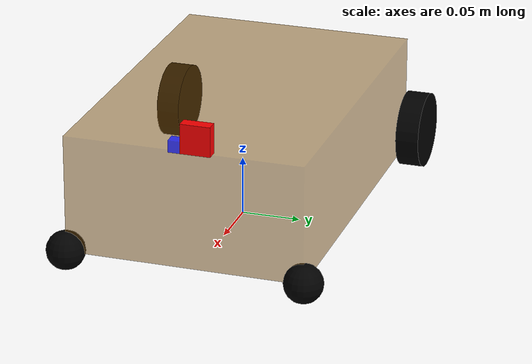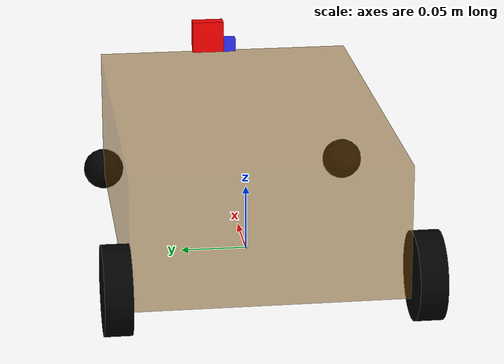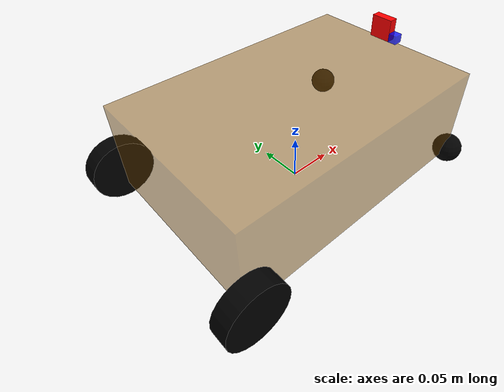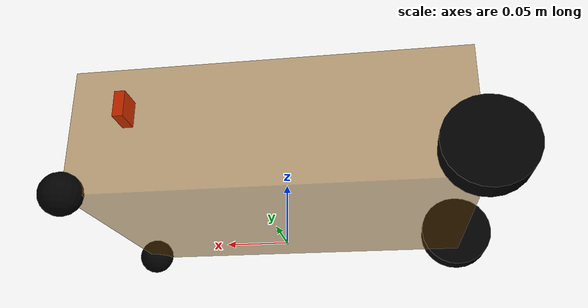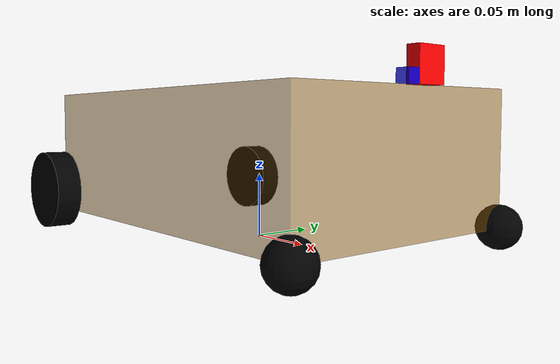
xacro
<robot name="follower_car" xmlns:xacro="http://wiki.ros.org/xacro">
    <xacro:include filename="inertia.xacro" />
    <xacro:include filename="base.xacro" />
    <xacro:include filename="camera.xacro" />
    <xacro:include filename="depthcamera.xacro" />
    <xacro:include filename="sim/driver.xacro" />
    <xacro:include filename="sim/camera.xacro" />
    <xacro:include filename="sim/depthcamera.xacro" />

</robot>

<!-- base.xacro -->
<robot name="follower_base" xmlns:xacro="http://www.ros.org/wiki/xacro">

    <xacro:property name="PI" value="3.141"/>

    <material name="black">
        <color rgba="0.0 0.0 0.0 1.0" />
    </material>

    <xacro:property name="base_footprint_radius" value="0.001" />
    <xacro:property name="base_link_x" value="0.3" /> <!-- base_link len-->
    <xacro:property name="base_link_y" value="${base_link_x/3*2}" /> <!-- base_link width -->
    <xacro:property name="base_link_z" value="0.1" /> <!-- base_link height -->
    <xacro:property name="earth_space" value="0.015" />
    <xacro:property name="base_link_m" value="0.5" />

    <link name="follower_base_footprint">
      <visual>
        <geometry>
          <sphere radius="${base_footprint_radius}" />
        </geometry>
      </visual>
    </link>

    <link name="follower_base_link">
      <visual>
        <geometry>
          <box size="${base_link_x} ${base_link_y} ${base_link_z}" />
        </geometry>
        <origin xyz="0 0 0" rpy="0 0 0" />
        <material name="yellow">
          <color rgba="0.5 0.3 0.0 0.5" />
        </material>
      </visual>
      <collision>
        <geometry>
          <box size="${base_link_x} ${base_link_y} ${base_link_z}" />
        </geometry>
        <origin xyz="0 0 0" rpy="0 0 0" />
      </collision>
      <xacro:Box_inertial_matrix m="${base_link_m}" l="${base_link_x}" w="${base_link_y}" h="${base_link_z}" />
    </link>

    <joint name="base_link2base_footprint" type="fixed">
      <parent link="follower_base_footprint" />
      <child link="follower_base_link" />
      <origin xyz="0 0 ${earth_space + base_link_z / 2 }" />
    </joint>
    <gazebo reference="follower_base_link">
        <material>Gazebo/Green</material>
    </gazebo>

    <xacro:property name="wheel_radius" value="0.0325" />
    <xacro:property name="wheel_length" value="0.02" />
    <xacro:property name="wheel_m" value="0.05" />

    <!-- flag1 flag2 x and y axis deviation -->
    <xacro:macro name="add_wheels" params="name flag1 flag2">
      <link name="follower_${name}_wheel">
        <visual>
          <geometry>
            <cylinder radius="${wheel_radius}" length="${wheel_length}" />
          </geometry>
          <origin xyz="0.0 0.0 0.0" rpy="${PI / 2} 0.0 0.0" />
          <material name="black" >
            <color rgba="0.0 0.0 0.0 1.0"/>
          </material>
        </visual>
        <collision>
          <geometry>
            <cylinder radius="${wheel_radius}" length="${wheel_length}" />
          </geometry>
          <origin xyz="0.0 0.0 0.0" rpy="${PI / 2} 0.0 0.0" />
        </collision>
        <xacro:cylinder_inertial_matrix m="${wheel_m}" r="${wheel_radius}" h="${wheel_length}" />
      </link>

      <joint name="${name}_wheel2base_link" type="continuous">
        <parent link="follower_base_link" />
        <child link="follower_${name}_wheel" />
        <origin xyz="${flag1 * base_link_x/2} ${flag2 * (base_link_y/2+wheel_length/2)} ${-(earth_space + base_link_z / 2) + wheel_radius }" />
        <axis xyz="0 1 0" />
      </joint>

      <gazebo reference="follower_${name}_wheel">
        <material>Gazebo/Black</material>
        <mu1>10000000</mu1>
		    <mu2>10000000</mu2>
		    <kp>10000000</kp>
		    <kd>1</kd>
      </gazebo>
    </xacro:macro>

    <xacro:add_wheels name="left_back" flag1="-1" flag2="1" />
    <xacro:add_wheels name="right_back" flag1="-1" flag2="-1" />

    <!-- omin -->
    <xacro:macro name="add_support_wheel" params="name flag1 flag2" >
      <link name="follower_${name}_wheel">
        <visual>
            <geometry>
                <sphere radius="${wheel_radius/2}" />
            </geometry>
            <origin xyz="0 0 0" rpy="0 0 0" />
            <material name="black" >
            <color rgba="0.0 0.0 0.0 0.0"/>
          </material>
        </visual>
        <collision>
            <geometry>
                <sphere radius="${wheel_radius/2}" />
            </geometry>
            <origin xyz="0 0 0" rpy="0 0 0" />
        </collision>
        <xacro:sphere_inertial_matrix m="${wheel_m}" r="${wheel_radius/2}" />
      </link>

      <joint name="${name}_wheel2base_link" type="continuous">
          <parent link="follower_base_link" />
          <child link="follower_${name}_wheel" />
          <origin xyz="${flag1 * base_link_x/2} ${flag2 * base_link_y/2} ${-(earth_space + base_link_z / 2 - wheel_radius/2) }" />
          <axis xyz="1 1 1" />
      </joint>
      <gazebo reference="follower_${name}_wheel">
        <material>Gazebo/Black</material>
      </gazebo>
    </xacro:macro>
    <xacro:add_support_wheel name="right_fore" flag1="1" flag2="-1" />
    <xacro:add_support_wheel name="left_fore" flag1="1" flag2="1" />
</robot>

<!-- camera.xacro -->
<robot name="my_camera" xmlns:xacro="http://wiki.ros.org/xacro">

    <xacro:property name="camera_length" value="0.01" />
    <xacro:property name="camera_width" value="0.01" />
    <xacro:property name="camera_height" value="0.01" />
    <xacro:property name="camera_x" value="${base_link_x / 2}" />
    <xacro:property name="camera_y" value="${-camera_width / 2}" />
    <xacro:property name="camera_z" value="${base_link_z / 2 + camera_height / 2}" />
    <xacro:property name="camera_m" value="0.01" />

    <link name="follower_camera">
        <visual>
            <geometry>
                <box size="${camera_length} ${camera_width} ${camera_height}" />
            </geometry>
            <origin xyz="0.0 0.0 0.0" rpy="0.0 0.0 0.0" />
            <material name="blue" >
                <color rgba="0 0 1 0.8" />
            </material>
        </visual>
        <collision>
            <geometry>
                <box size="${camera_length} ${camera_width} ${camera_height}" />
            </geometry>
            <origin xyz="0.0 0.0 0.0" rpy="0.0 0.0 0.0" />
        </collision>
        <xacro:Box_inertial_matrix m="${camera_m}" l="${camera_length}" w="${camera_width}" h="${camera_height}" />
    </link>

    <joint name="camera2base_link" type="fixed">
        <parent link="follower_base_link" />
        <child link="follower_camera" />
        <origin xyz="${camera_x} ${camera_y} ${camera_z}" />
    </joint>
    <gazebo reference="follower_camera">
        <material>Gazebo/Blue</material>
    </gazebo>
</robot>

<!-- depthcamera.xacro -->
<robot name="my_depthcamera" xmlns:xacro="http://wiki.ros.org/xacro">

    <xacro:property name="camera_length" value="0.01" />
    <xacro:property name="camera_width" value="0.025" />
    <xacro:property name="camera_height" value="0.025" />
    <xacro:property name="camera_x" value="${base_link_x / 2}" />
    <xacro:property name="camera_y" value="${camera_width / 2}" />
    <xacro:property name="camera_z" value="${base_link_z / 2 + camera_height / 2}" />
    <xacro:property name="camera_m" value="0.01" />

    <link name="follower_depthcamera">
        <visual>
            <geometry>
                <box size="${camera_length} ${camera_width} ${camera_height}" />
            </geometry>
            <origin xyz="0.0 0.0 0.0" rpy="0.0 0.0 0.0" />
            <material name="red">
                <color rgba="1.0 0.0 0.0 0.0"/>
            </material>
        </visual>
        <collision>
            <geometry>
                <box size="${camera_length} ${camera_width} ${camera_height}" />
            </geometry>
            <origin xyz="0.0 0.0 0.0" rpy="0.0 0.0 0.0" />
        </collision>
        <xacro:Box_inertial_matrix m="${camera_m}" l="${camera_length}" w="${camera_width}" h="${camera_height}" />
    </link>

    <joint name="depthcamera2base_link" type="fixed">
        <parent link="follower_base_link" />
        <child link="follower_depthcamera" />
        <origin xyz="${camera_x} ${camera_y} ${camera_z}" />
    </joint>
    <gazebo reference="follower_depthcamera">
        <material>Gazebo/Red</material>
    </gazebo>
</robot>
